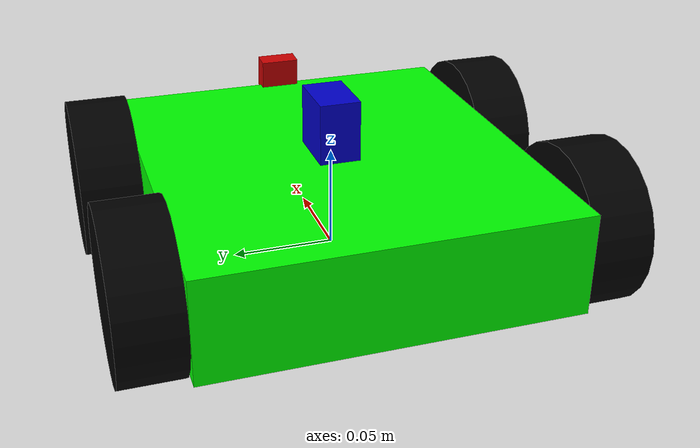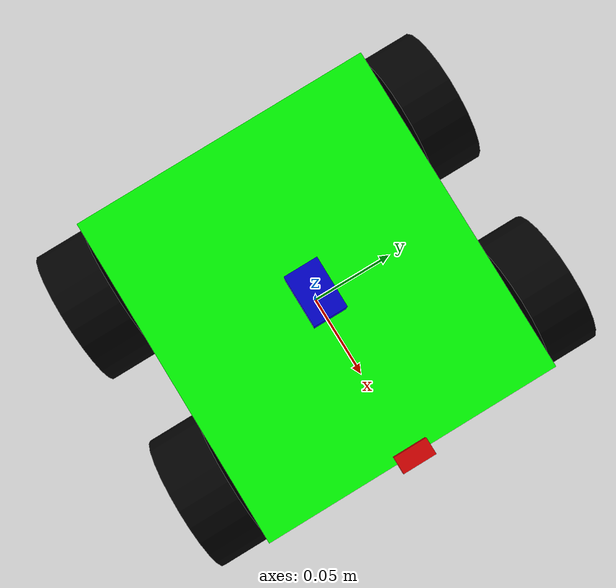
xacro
<?xml version="1.0"?>
<robot xmlns:xacro="http://www.ros.org/wiki/xacro" name="awd_robot">

    <xacro:include filename="utils.urdf.xacro" />
    <xacro:include filename="awdbot/awdbot_include.xacro" />

    <!-- Start GZ or Ignition depending on ROS 2 Version -->
    <xacro:arg name="is_ignition" default="true"/>

    <!-- Load Simulated or Real Hardware Interfaces -->
    <xacro:arg name="is_sim" default="true"/>

    <xacro:arg name="port_name"  default="/dev/ttyACM0"/>
    <xacro:arg name="baud_rate"  default="57600"/>

    <xacro:arg name="dxl1_id" default="1"/>
    <xacro:arg name="dxl2_id" default="2"/>
    <xacro:arg name="dxl3_id" default="3"/>
    <xacro:arg name="dxl4_id" default="4"/>

    <!-- Include Gazebo Parameters -->
    <xacro:include filename="$(find awdbot_description)/urdf/awdbot/awdbot_gazebo.xacro" />

    <!-- Include ros2_control Plugins -->
    <xacro:include filename="$(find awdbot_description)/urdf/awdbot/awdbot_ros2_control.xacro" />

    <link name="base_footprint"/>

    <joint name="base_joint" type="fixed">
        <parent link="base_footprint" />
        <child link="base_link" />
        <origin rpy="0 0 0" xyz="0 0 ${chassis_height/2}" />
    </joint>

    <link name="base_link">
        <xacro:box_inertial name="base_link" m="${chassis_mass}" x="${chassis_length}" y="${chassis_width}" z="${chassis_height}" />
        <collision name="chassis_collision">
            <geometry>
                <box size="${chassis_length} ${chassis_width} ${chassis_height}" />
            </geometry>
        </collision>
        <visual name="base_link_visual">
            <origin xyz="0 0 0" rpy=" 0 0 0" />
            <geometry>
                <box size="${chassis_length} ${chassis_width} ${chassis_height}" />
            </geometry>
            <material name="green"/>
        </visual>
    </link>
    <link name="wheel_front_right">
        <xacro:cylinder_inertial name="wheel_front_right" m="${wheel_mass}" r="${wheel_radius}" h="${wheel_width}" />
        <collision name="wheel_FR_collision">
            <origin xyz="0 0 0" rpy="1.5708 0 0" />
            <geometry>
                <cylinder radius="${wheel_radius}" length="${wheel_width}" />
            </geometry>
        </collision>
        <visual name="wheel_FR_visual">
            <origin xyz="0 0 0" rpy="1.5708 0 0" />
            <geometry>
                <cylinder radius="${wheel_radius}" length="${wheel_width}" />
            </geometry>
            <material name="black"/>
        </visual>
    </link>
    <link name="wheel_front_left">
        <xacro:cylinder_inertial name="wheel_front_left" m="${wheel_mass}" r="${wheel_radius}" h="${wheel_width}" />
        <collision name="wheel_FL_collision">
            <origin xyz="0 0 0" rpy="1.5708 0 0" />
            <geometry>
                <cylinder radius="${wheel_radius}" length="${wheel_width}" />
            </geometry>
        </collision>
        <visual name="wheel_FL_visual">
            <origin xyz="0 0 0" rpy="1.5708 0 0" />
            <geometry>
                <cylinder radius="${wheel_radius}" length="${wheel_width}" />
            </geometry>
            <material name="black"/>
        </visual>
    </link>
    <link name="wheel_rear_right">
        <xacro:cylinder_inertial name="wheel_rear_right" m="${wheel_mass}" r="${wheel_radius}" h="${wheel_width}" />
        <collision name="wheel_RR_collision">
            <origin xyz="0 0 0" rpy="1.5708 0 0" />
            <geometry>
                <cylinder radius="${wheel_radius}" length="${wheel_width}" />
            </geometry>
        </collision>
        <visual name="wheel_RR_visual">
            <origin xyz="0 0 0" rpy="1.5708 0 0" />
            <geometry>
                <cylinder radius="${wheel_radius}" length="${wheel_width}" />
            </geometry>
            <material name="black"/>
        </visual>
    </link>
    <link name="wheel_rear_left">
        <xacro:cylinder_inertial name="wheel_rear_left" m="${wheel_mass}" r="${wheel_radius}" h="${wheel_width}" />
        <collision name="wheel_RL_collision">
            <origin xyz="0 0 0" rpy="1.5708 0 0" />
            <geometry>
                <cylinder radius="${wheel_radius}" length="${wheel_width}" />
            </geometry>
        </collision>
        <visual name="wheel_RL_visual">
            <origin xyz="0 0 0" rpy="1.5708 0 0" />
            <geometry>
                <cylinder radius="${wheel_radius}" length="${wheel_width}" />
            </geometry>
            <material name="black"/>
        </visual>
    </link>

    <link name="camera_link">
        <xacro:box_inertial name="camera_link" m="${camera_mass}" x="${camera_width}" y="${camera_length}" z="${camera_height}" />
        <collision name="camera_link_collision">
            <origin xyz="0 0 0" rpy=" 0 0 0" />
            <geometry>
                <box size="${camera_length} ${camera_width} ${camera_height}" />
            </geometry>
        </collision>
        <visual name="camera_link_visual">
            <origin xyz="0 0 0" rpy=" 0 0 0" />
            <geometry>
                <box size="${camera_length} ${camera_width} ${camera_height}" />
            </geometry>
            <material name="red"/>
        </visual>
    </link>

    <link name="base_scan">
      <xacro:box_inertial name="base_scan" m="${lidar_mass}" x="${lidar_width}" y="${lidar_length}" z="${lidar_height}" />
        <collision name="lidar_sensor_collision">
            <origin xyz="0 0 ${-lidar_height/2+0.01}" rpy="0 0 0" />
            <geometry>
                <box size="${lidar_length} ${lidar_width} ${lidar_height}" />
            </geometry>
        </collision>
        <visual name="lidar_sensor_visual">
            <origin xyz="0 0 ${-lidar_height/2+0.01}" rpy="0 0 0" />
            <geometry>
                <box size="${lidar_length} ${lidar_width} ${lidar_height}" />
            </geometry>
            <material name="blue"/>
        </visual>
    </link>

    <joint name="wheel_front_right_joint" type="continuous">
        <parent link="base_link" />
        <child link="wheel_front_right" />
        <origin xyz="${chassis_length/2-wheel_radius} -${chassis_width/2+wheel_width/2} 0" rpy="0 0 0" />
        <axis xyz="0 1 0" />
    </joint>
    <joint name="wheel_front_left_joint" type="continuous">
        <parent link="base_link" />
        <child link="wheel_front_left" />
        <origin xyz="${chassis_length/2-wheel_radius} ${chassis_width/2+wheel_width/2} 0" rpy="0 0 0" />
        <axis xyz="0 1 0" />
    </joint>
    <joint name="wheel_rear_right_joint" type="continuous">
        <parent link="base_link" />
        <child link="wheel_rear_right" />
        <origin xyz="-${chassis_length/2-wheel_radius} -${chassis_width/2+wheel_width/2} 0" rpy="0 0 0" />
        <axis xyz="0 1 0" />
    </joint>
    <joint name="wheel_rear_left_joint" type="continuous">
        <parent link="base_link" />
        <child link="wheel_rear_left" />
        <origin xyz="-${chassis_length/2-wheel_radius} ${chassis_width/2+wheel_width/2} 0" rpy="0 0 0" />
        <axis xyz="0 1 0" />
    </joint>
    <joint name="camera_joint" type="fixed">
        <parent link="base_link" />
        <child link="camera_link" />
        <origin xyz="${chassis_length/2} 0 ${chassis_height/2+camera_height/2}" rpy="0.0 1.5 0.0"/>
    </joint>

    <joint name="lidar_joint" type="fixed">
      <parent link="base_link"/>
      <child link="base_scan"/>
      <origin xyz="0 0 ${chassis_height/2 + lidar_height-0.01}" rpy="0 0 0"/>
      <axis xyz="0 0 1"/>
    </joint>

</robot>

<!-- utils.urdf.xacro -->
<robot xmlns:xacro="http://www.ros.org/wiki/xacro">

    <!-- inertia -->
    <xacro:macro name="cylinder_inertia" params="m r h">
        <inertia  ixx="${m*(3*r*r+h*h)/12}" ixy="0" ixz = "0"
                  iyy="${m*(3*r*r+h*h)/12}" iyz="0" izz="${m*r*r/2}" />
    </xacro:macro>

    <xacro:macro name="box_inertia" params="m x y z">
        <inertia  ixx="${m*(y*y+z*z)/12}" ixy = "0" ixz = "0"
                  iyy="${m*(z*z+x*x)/12}" iyz = "0" izz="${m*(x*x+y*y)/12}" />
    </xacro:macro>

    <xacro:macro name="xyz_inertia" params="xx yy zz">
        <inertia ixx="${xx}" ixy="0.0" ixz="0.0"
                 iyy="${yy}" iyz="0.0" izz="${zz}" />
    </xacro:macro>

    <xacro:macro name="sphere_inertia" params="m r">
        <inertia  ixx="${2*m*r*r/5}" ixy="0" ixz = "0"
                  iyy="${2*m*r*r/5}" iyz="0" izz="${2*m*r*r/5}" />
    </xacro:macro>

    <xacro:macro name="cylinder_inertial" params="name m r h">
        <inertial name="${name}_inertial">
            <mass value="${m}"/>
            <xacro:cylinder_inertia m="${m}" r="${r}" h="${h}" />
        </inertial>
    </xacro:macro>

    <xacro:macro name="box_inertial" params="name m x y z">
        <inertial name="${name}_inertial">
            <mass value="${m}"/>
            <xacro:box_inertia m="${m}" x="${x}" y="${y}" z="${z}" />
        </inertial>
    </xacro:macro>

    <xacro:macro name="sphere_inertial" params="name m r">
        <inertial name="${name}_inertial">
            <mass value="${m}"/>
            <xacro:sphere_inertia m="${m}" r="${r}" />
        </inertial>
    </xacro:macro>

    <material name="black">
        <color rgba="0.0 0.0 0.0 1.0"/>
    </material>

    <material name="blue">
        <color rgba="0.0 0.0 0.8 1.0"/>
    </material>

    <material name="green">
        <color rgba="0.0 1.0 0.0 1.0"/>
    </material>

    <material name="grey">
        <color rgba="0.2 0.2 0.2 1.0"/>
    </material>

    <material name="orange">
        <color rgba="${255/255} ${108/255} ${10/255} 1.0"/>
    </material>

    <material name="brown">
        <color rgba="${222/255} ${207/255} ${195/255} 1.0"/>
    </material>

    <material name="red">
        <color rgba="0.8 0.0 0.0 1.0"/>
    </material>

    <material name="white">
        <color rgba="1.0 1.0 1.0 1.0"/>
    </material>

	<material name="yellow">
	  <color rgba="1.0 1.0 0 1.0"/>
	</material>

	<material name="cyan">
		<color rgba="0 1.0 1.0 1.0" />
	</material>
</robot>

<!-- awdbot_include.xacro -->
<robot xmlns:xacro="http://www.ros.org/wiki/xacro" name="awd_robot">

    <xacro:property name="camera_width" value="0.02" />
    <xacro:property name="camera_length" value="0.02" />
    <xacro:property name="camera_height" value="0.01" />
    <xacro:property name="camera_mass" value="0.01" />
    <xacro:property name="chassis_width" value="0.18" />
    <xacro:property name="chassis_length" value="0.2" />
    <xacro:property name="chassis_height" value="0.05" />
    <xacro:property name="chassis_mass" value="0.5" />
    <xacro:property name="wheel_radius" value="0.04" />
    <xacro:property name="wheel_width" value="0.03" />
    <xacro:property name="wheel_mass" value="0.025" />
	<xacro:property name="lidar_width" value="0.02" />
    <xacro:property name="lidar_length" value="0.03" />
    <xacro:property name="lidar_height" value="0.03" />
    <xacro:property name="lidar_mass" value="0.01" />

</robot>
